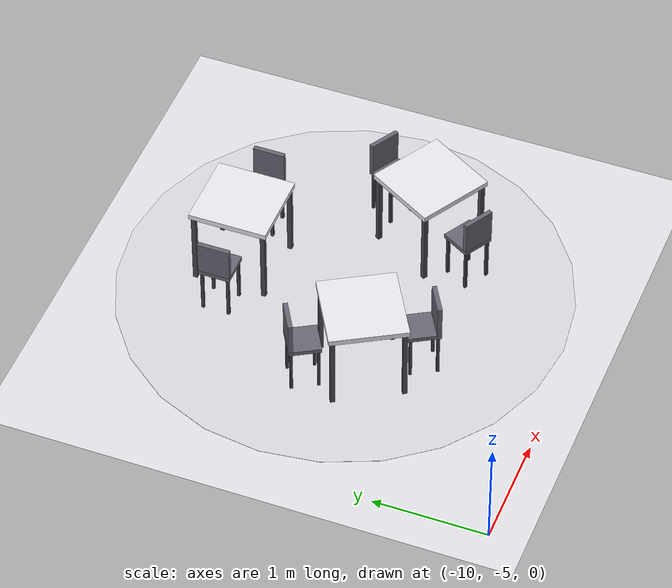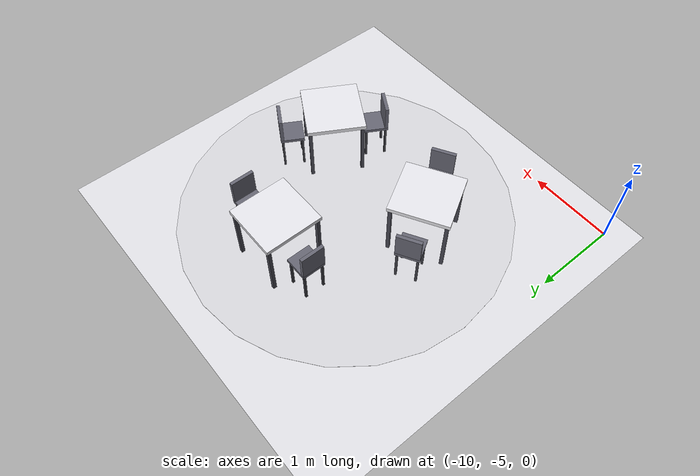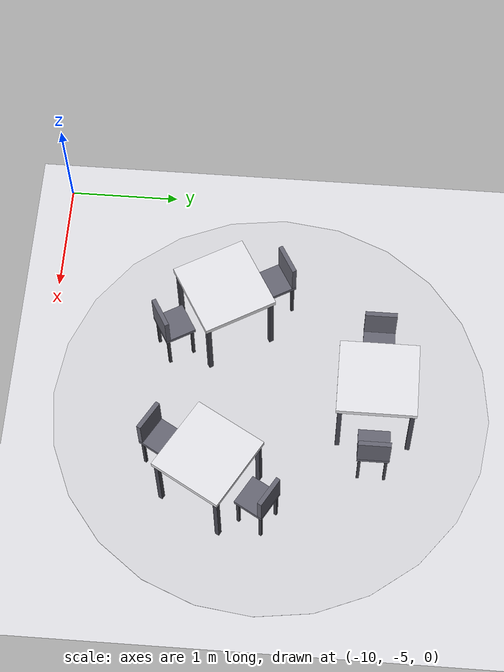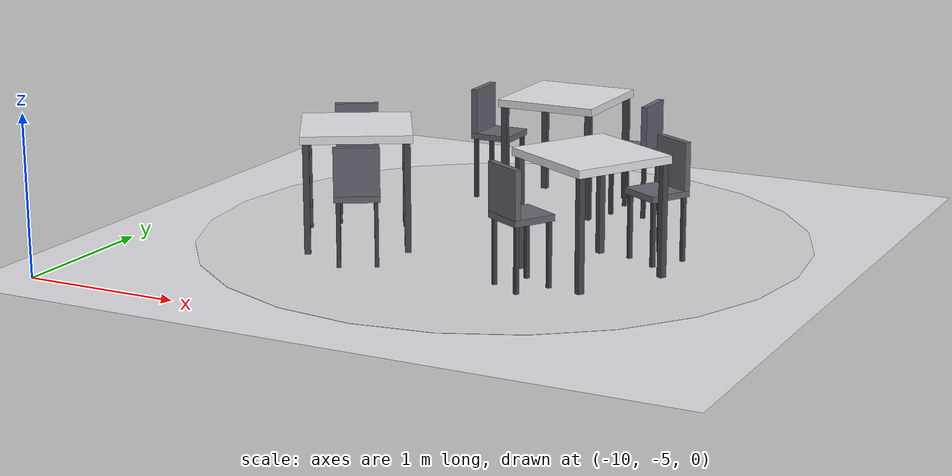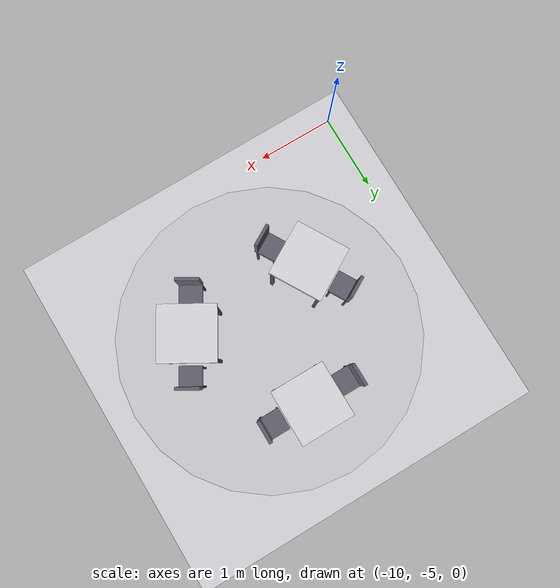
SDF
<sdf version="1.8">
 <world name="restaurant_blueprint_world">
  <model name="ground_plane">
   <static>true</static>
   <link name="link">
    <collision name="collision">
     <geometry><plane><normal>0 0 1</normal><size>120 120</size></plane></geometry>
    </collision>
    <visual name="visual">
     <geometry><plane><normal>0 0 1</normal><size>120 120</size></plane></geometry>
     <material>
      <ambient>0.88 0.88 0.90 1</ambient>
      <diffuse>0.88 0.88 0.90 1</diffuse>
      <specular>0.1 0.1 0.1 1</specular>
     </material>
    </visual>
   </link>
  </model>
  <model name="restaurant_boundary">
   <static>true</static>
   <link name="group02_pillar_sw">
    <visual name="sw_cluster_floor_disc_vis">
     <pose>-7.878 -2.955 0.003 0 0 0</pose>
     <geometry><cylinder><radius>1.95</radius><length>0.002</length></cylinder></geometry>
     <material><ambient>0.84 0.84 0.86 1</ambient><diffuse>0.84 0.84 0.86 1</diffuse></material>
    </visual>
    <visual name="sw_cluster_table_n_vis">
     <pose>-7.878 -2.030 0.725 0.0000 0.0000 0.0000</pose>
     <geometry><box><size>0.67 0.69 0.05</size></box></geometry>
     <material><ambient>0.85 0.85 0.88 1</ambient><diffuse>0.90 0.90 0.92 1</diffuse></material>
    </visual>
    <visual name="sw_cluster_table_n_leg_1_vis">
     <pose>-7.578 -1.720 0.350 0 0 0.0000</pose>
     <geometry><box><size>0.04 0.04 0.70</size></box></geometry>
     <material><ambient>0.22 0.22 0.25 1</ambient><diffuse>0.28 0.28 0.32 1</diffuse></material>
    </visual>
    <visual name="sw_cluster_table_n_leg_2_vis">
     <pose>-8.178 -1.720 0.350 0 0 0.0000</pose>
     <geometry><box><size>0.04 0.04 0.70</size></box></geometry>
     <material><ambient>0.22 0.22 0.25 1</ambient><diffuse>0.28 0.28 0.32 1</diffuse></material>
    </visual>
    <visual name="sw_cluster_table_n_leg_3_vis">
     <pose>-7.578 -2.340 0.350 0 0 0.0000</pose>
     <geometry><box><size>0.04 0.04 0.70</size></box></geometry>
     <material><ambient>0.22 0.22 0.25 1</ambient><diffuse>0.28 0.28 0.32 1</diffuse></material>
    </visual>
    <visual name="sw_cluster_table_n_leg_4_vis">
     <pose>-8.178 -2.340 0.350 0 0 0.0000</pose>
     <geometry><box><size>0.04 0.04 0.70</size></box></geometry>
     <material><ambient>0.22 0.22 0.25 1</ambient><diffuse>0.28 0.28 0.32 1</diffuse></material>
    </visual>
    <collision name="sw_cluster_table_n_col">
     <pose>-7.878 -2.030 0.725 0.0000 0.0000 0.0000</pose>
     <geometry><box><size>0.67 0.69 0.05</size></box></geometry>
    </collision>
    <collision name="sw_cluster_table_n_leg_1_col">
     <pose>-7.578 -1.720 0.350 0 0 0.0000</pose>
     <geometry><box><size>0.04 0.04 0.70</size></box></geometry>
    </collision>
    <collision name="sw_cluster_table_n_leg_2_col">
     <pose>-8.178 -1.720 0.350 0 0 0.0000</pose>
     <geometry><box><size>0.04 0.04 0.70</size></box></geometry>
    </collision>
    <collision name="sw_cluster_table_n_leg_3_col">
     <pose>-7.578 -2.340 0.350 0 0 0.0000</pose>
     <geometry><box><size>0.04 0.04 0.70</size></box></geometry>
    </collision>
    <collision name="sw_cluster_table_n_leg_4_col">
     <pose>-8.178 -2.340 0.350 0 0 0.0000</pose>
     <geometry><box><size>0.04 0.04 0.70</size></box></geometry>
    </collision>
    <visual name="sw_cluster_chair_n_e_seat_vis">
     <pose>-7.382 -2.030 0.430 0.0000 0.0000 0.0000</pose>
     <geometry><box><size>0.28 0.28 0.04</size></box></geometry>
     <material><ambient>0.30 0.30 0.33 1</ambient><diffuse>0.40 0.40 0.45 1</diffuse></material>
    </visual>
    <visual name="sw_cluster_chair_n_e_back_vis">
     <pose>-7.262 -2.030 0.600 0 0 0.0000</pose>
     <geometry><box><size>0.04 0.28 0.30</size></box></geometry>
     <material><ambient>0.30 0.30 0.33 1</ambient><diffuse>0.40 0.40 0.45 1</diffuse></material>
    </visual>
    <visual name="sw_cluster_chair_n_e_leg_1_vis">
     <pose>-7.267 -1.915 0.205 0 0 0.0000</pose>
     <geometry><box><size>0.025 0.025 0.41</size></box></geometry>
     <material><ambient>0.20 0.20 0.22 1</ambient><diffuse>0.25 0.25 0.28 1</diffuse></material>
    </visual>
    <visual name="sw_cluster_chair_n_e_leg_2_vis">
     <pose>-7.497 -1.915 0.205 0 0 0.0000</pose>
     <geometry><box><size>0.025 0.025 0.41</size></box></geometry>
     <material><ambient>0.20 0.20 0.22 1</ambient><diffuse>0.25 0.25 0.28 1</diffuse></material>
    </visual>
    <visual name="sw_cluster_chair_n_e_leg_3_vis">
     <pose>-7.267 -2.145 0.205 0 0 0.0000</pose>
     <geometry><box><size>0.025 0.025 0.41</size></box></geometry>
     <material><ambient>0.20 0.20 0.22 1</ambient><diffuse>0.25 0.25 0.28 1</diffuse></material>
    </visual>
    <visual name="sw_cluster_chair_n_e_leg_4_vis">
     <pose>-7.497 -2.145 0.205 0 0 0.0000</pose>
     <geometry><box><size>0.025 0.025 0.41</size></box></geometry>
     <material><ambient>0.20 0.20 0.22 1</ambient><diffuse>0.25 0.25 0.28 1</diffuse></material>
    </visual>
    <collision name="sw_cluster_chair_n_e_seat_col">
     <pose>-7.382 -2.030 0.430 0.0000 0.0000 0.0000</pose>
     <geometry><box><size>0.28 0.28 0.04</size></box></geometry>
    </collision>
    <collision name="sw_cluster_chair_n_e_back_col">
     <pose>-7.262 -2.030 0.600 0 0 0.0000</pose>
     <geometry><box><size>0.04 0.28 0.30</size></box></geometry>
    </collision>
    <collision name="sw_cluster_chair_n_e_leg_1_col">
     <pose>-7.267 -1.915 0.205 0 0 0.0000</pose>
     <geometry><box><size>0.025 0.025 0.41</size></box></geometry>
    </collision>
    <collision name="sw_cluster_chair_n_e_leg_2_col">
     <pose>-7.497 -1.915 0.205 0 0 0.0000</pose>
     <geometry><box><size>0.025 0.025 0.41</size></box></geometry>
    </collision>
    <collision name="sw_cluster_chair_n_e_leg_3_col">
     <pose>-7.267 -2.145 0.205 0 0 0.0000</pose>
     <geometry><box><size>0.025 0.025 0.41</size></box></geometry>
    </collision>
    <collision name="sw_cluster_chair_n_e_leg_4_col">
     <pose>-7.497 -2.145 0.205 0 0 0.0000</pose>
     <geometry><box><size>0.025 0.025 0.41</size></box></geometry>
    </collision>
    <visual name="sw_cluster_chair_n_w_seat_vis">
     <pose>-8.374 -2.030 0.430 0.0000 0.0000 0.0000</pose>
     <geometry><box><size>0.28 0.28 0.04</size></box></geometry>
     <material><ambient>0.30 0.30 0.33 1</ambient><diffuse>0.40 0.40 0.45 1</diffuse></material>
    </visual>
    <visual name="sw_cluster_chair_n_w_back_vis">
     <pose>-8.494 -2.030 0.600 0 0 0.0000</pose>
     <geometry><box><size>0.04 0.28 0.30</size></box></geometry>
     <material><ambient>0.30 0.30 0.33 1</ambient><diffuse>0.40 0.40 0.45 1</diffuse></material>
    </visual>
    <visual name="sw_cluster_chair_n_w_leg_1_vis">
     <pose>-8.259 -1.915 0.205 0 0 0.0000</pose>
     <geometry><box><size>0.025 0.025 0.41</size></box></geometry>
     <material><ambient>0.20 0.20 0.22 1</ambient><diffuse>0.25 0.25 0.28 1</diffuse></material>
    </visual>
    <visual name="sw_cluster_chair_n_w_leg_2_vis">
     <pose>-8.489 -1.915 0.205 0 0 0.0000</pose>
     <geometry><box><size>0.025 0.025 0.41</size></box></geometry>
     <material><ambient>0.20 0.20 0.22 1</ambient><diffuse>0.25 0.25 0.28 1</diffuse></material>
    </visual>
    <visual name="sw_cluster_chair_n_w_leg_3_vis">
     <pose>-8.259 -2.145 0.205 0 0 0.0000</pose>
     <geometry><box><size>0.025 0.025 0.41</size></box></geometry>
     <material><ambient>0.20 0.20 0.22 1</ambient><diffuse>0.25 0.25 0.28 1</diffuse></material>
    </visual>
    <visual name="sw_cluster_chair_n_w_leg_4_vis">
     <pose>-8.489 -2.145 0.205 0 0 0.0000</pose>
     <geometry><box><size>0.025 0.025 0.41</size></box></geometry>
     <material><ambient>0.20 0.20 0.22 1</ambient><diffuse>0.25 0.25 0.28 1</diffuse></material>
    </visual>
    <collision name="sw_cluster_chair_n_w_seat_col">
     <pose>-8.374 -2.030 0.430 0.0000 0.0000 0.0000</pose>
     <geometry><box><size>0.28 0.28 0.04</size></box></geometry>
    </collision>
    <collision name="sw_cluster_chair_n_w_back_col">
     <pose>-8.494 -2.030 0.600 0 0 0.0000</pose>
     <geometry><box><size>0.04 0.28 0.30</size></box></geometry>
    </collision>
    <collision name="sw_cluster_chair_n_w_leg_1_col">
     <pose>-8.259 -1.915 0.205 0 0 0.0000</pose>
     <geometry><box><size>0.025 0.025 0.41</size></box></geometry>
    </collision>
    <collision name="sw_cluster_chair_n_w_leg_2_col">
     <pose>-8.489 -1.915 0.205 0 0 0.0000</pose>
     <geometry><box><size>0.025 0.025 0.41</size></box></geometry>
    </collision>
    <collision name="sw_cluster_chair_n_w_leg_3_col">
     <pose>-8.259 -2.145 0.205 0 0 0.0000</pose>
     <geometry><box><size>0.025 0.025 0.41</size></box></geometry>
    </collision>
    <collision name="sw_cluster_chair_n_w_leg_4_col">
     <pose>-8.489 -2.145 0.205 0 0 0.0000</pose>
     <geometry><box><size>0.025 0.025 0.41</size></box></geometry>
    </collision>
    <visual name="sw_cluster_table_sw_vis">
     <pose>-8.679 -3.418 0.725 0.0000 0.0000 2.0944</pose>
     <geometry><box><size>0.67 0.69 0.05</size></box></geometry>
     <material><ambient>0.85 0.85 0.88 1</ambient><diffuse>0.90 0.90 0.92 1</diffuse></material>
    </visual>
    <visual name="sw_cluster_table_sw_leg_1_vis">
     <pose>-9.097 -3.313 0.350 0 0 2.0944</pose>
     <geometry><box><size>0.04 0.04 0.70</size></box></geometry>
     <material><ambient>0.22 0.22 0.25 1</ambient><diffuse>0.28 0.28 0.32 1</diffuse></material>
    </visual>
    <visual name="sw_cluster_table_sw_leg_2_vis">
     <pose>-8.797 -3.833 0.350 0 0 2.0944</pose>
     <geometry><box><size>0.04 0.04 0.70</size></box></geometry>
     <material><ambient>0.22 0.22 0.25 1</ambient><diffuse>0.28 0.28 0.32 1</diffuse></material>
    </visual>
    <visual name="sw_cluster_table_sw_leg_3_vis">
     <pose>-8.561 -3.003 0.350 0 0 2.0944</pose>
     <geometry><box><size>0.04 0.04 0.70</size></box></geometry>
     <material><ambient>0.22 0.22 0.25 1</ambient><diffuse>0.28 0.28 0.32 1</diffuse></material>
    </visual>
    <visual name="sw_cluster_table_sw_leg_4_vis">
     <pose>-8.261 -3.523 0.350 0 0 2.0944</pose>
     <geometry><box><size>0.04 0.04 0.70</size></box></geometry>
     <material><ambient>0.22 0.22 0.25 1</ambient><diffuse>0.28 0.28 0.32 1</diffuse></material>
    </visual>
    <collision name="sw_cluster_table_sw_col">
     <pose>-8.679 -3.418 0.725 0.0000 0.0000 2.0944</pose>
     <geometry><box><size>0.67 0.69 0.05</size></box></geometry>
    </collision>
    <collision name="sw_cluster_table_sw_leg_1_col">
     <pose>-9.097 -3.313 0.350 0 0 2.0944</pose>
     <geometry><box><size>0.04 0.04 0.70</size></box></geometry>
    </collision>
    <collision name="sw_cluster_table_sw_leg_2_col">
     <pose>-8.797 -3.833 0.350 0 0 2.0944</pose>
     <geometry><box><size>0.04 0.04 0.70</size></box></geometry>
    </collision>
    <collision name="sw_cluster_table_sw_leg_3_col">
     <pose>-8.561 -3.003 0.350 0 0 2.0944</pose>
     <geometry><box><size>0.04 0.04 0.70</size></box></geometry>
    </collision>
    <collision name="sw_cluster_table_sw_leg_4_col">
     <pose>-8.261 -3.523 0.350 0 0 2.0944</pose>
     <geometry><box><size>0.04 0.04 0.70</size></box></geometry>
    </collision>
    <visual name="sw_cluster_chair_sw_1_seat_vis">
     <pose>-8.927 -2.988 0.430 0.0000 0.0000 2.0944</pose>
     <geometry><box><size>0.28 0.28 0.04</size></box></geometry>
     <material><ambient>0.30 0.30 0.33 1</ambient><diffuse>0.40 0.40 0.45 1</diffuse></material>
    </visual>
    <visual name="sw_cluster_chair_sw_1_back_vis">
     <pose>-8.987 -2.884 0.600 0 0 2.0944</pose>
     <geometry><box><size>0.04 0.28 0.30</size></box></geometry>
     <material><ambient>0.30 0.30 0.33 1</ambient><diffuse>0.40 0.40 0.45 1</diffuse></material>
    </visual>
    <visual name="sw_cluster_chair_sw_1_leg_1_vis">
     <pose>-9.084 -2.946 0.205 0 0 2.0944</pose>
     <geometry><box><size>0.025 0.025 0.41</size></box></geometry>
     <material><ambient>0.20 0.20 0.22 1</ambient><diffuse>0.25 0.25 0.28 1</diffuse></material>
    </visual>
    <visual name="sw_cluster_chair_sw_1_leg_2_vis">
     <pose>-8.969 -3.145 0.205 0 0 2.0944</pose>
     <geometry><box><size>0.025 0.025 0.41</size></box></geometry>
     <material><ambient>0.20 0.20 0.22 1</ambient><diffuse>0.25 0.25 0.28 1</diffuse></material>
    </visual>
    <visual name="sw_cluster_chair_sw_1_leg_3_vis">
     <pose>-8.885 -2.831 0.205 0 0 2.0944</pose>
     <geometry><box><size>0.025 0.025 0.41</size></box></geometry>
     <material><ambient>0.20 0.20 0.22 1</ambient><diffuse>0.25 0.25 0.28 1</diffuse></material>
    </visual>
    <visual name="sw_cluster_chair_sw_1_leg_4_vis">
     <pose>-8.770 -3.030 0.205 0 0 2.0944</pose>
     <geometry><box><size>0.025 0.025 0.41</size></box></geometry>
     <material><ambient>0.20 0.20 0.22 1</ambient><diffuse>0.25 0.25 0.28 1</diffuse></material>
    </visual>
    <collision name="sw_cluster_chair_sw_1_seat_col">
     <pose>-8.927 -2.988 0.430 0.0000 0.0000 2.0944</pose>
     <geometry><box><size>0.28 0.28 0.04</size></box></geometry>
    </collision>
    <collision name="sw_cluster_chair_sw_1_back_col">
     <pose>-8.987 -2.884 0.600 0 0 2.0944</pose>
     <geometry><box><size>0.04 0.28 0.30</size></box></geometry>
    </collision>
    <collision name="sw_cluster_chair_sw_1_leg_1_col">
     <pose>-9.084 -2.946 0.205 0 0 2.0944</pose>
     <geometry><box><size>0.025 0.025 0.41</size></box></geometry>
    </collision>
    <collision name="sw_cluster_chair_sw_1_leg_2_col">
     <pose>-8.969 -3.145 0.205 0 0 2.0944</pose>
     <geometry><box><size>0.025 0.025 0.41</size></box></geometry>
    </collision>
    <collision name="sw_cluster_chair_sw_1_leg_3_col">
     <pose>-8.885 -2.831 0.205 0 0 2.0944</pose>
     <geometry><box><size>0.025 0.025 0.41</size></box></geometry>
    </collision>
    <collision name="sw_cluster_chair_sw_1_leg_4_col">
     <pose>-8.770 -3.030 0.205 0 0 2.0944</pose>
     <geometry><box><size>0.025 0.025 0.41</size></box></geometry>
    </collision>
    <visual name="sw_cluster_chair_sw_2_seat_vis">
     <pose>-8.431 -3.847 0.430 0.0000 0.0000 2.0944</pose>
     <geometry><box><size>0.28 0.28 0.04</size></box></geometry>
     <material><ambient>0.30 0.30 0.33 1</ambient><diffuse>0.40 0.40 0.45 1</diffuse></material>
    </visual>
    <visual name="sw_cluster_chair_sw_2_back_vis">
     <pose>-8.371 -3.951 0.600 0 0 2.0944</pose>
     <geometry><box><size>0.04 0.28 0.30</size></box></geometry>
     <material><ambient>0.30 0.30 0.33 1</ambient><diffuse>0.40 0.40 0.45 1</diffuse></material>
    </visual>
    <visual name="sw_cluster_chair_sw_2_leg_1_vis">
     <pose>-8.588 -3.805 0.205 0 0 2.0944</pose>
     <geometry><box><size>0.025 0.025 0.41</size></box></geometry>
     <material><ambient>0.20 0.20 0.22 1</ambient><diffuse>0.25 0.25 0.28 1</diffuse></material>
    </visual>
    <visual name="sw_cluster_chair_sw_2_leg_2_vis">
     <pose>-8.473 -4.004 0.205 0 0 2.0944</pose>
     <geometry><box><size>0.025 0.025 0.41</size></box></geometry>
     <material><ambient>0.20 0.20 0.22 1</ambient><diffuse>0.25 0.25 0.28 1</diffuse></material>
    </visual>
    <visual name="sw_cluster_chair_sw_2_leg_3_vis">
     <pose>-8.389 -3.690 0.205 0 0 2.0944</pose>
     <geometry><box><size>0.025 0.025 0.41</size></box></geometry>
     <material><ambient>0.20 0.20 0.22 1</ambient><diffuse>0.25 0.25 0.28 1</diffuse></material>
    </visual>
    <visual name="sw_cluster_chair_sw_2_leg_4_vis">
     <pose>-8.274 -3.889 0.205 0 0 2.0944</pose>
     <geometry><box><size>0.025 0.025 0.41</size></box></geometry>
     <material><ambient>0.20 0.20 0.22 1</ambient><diffuse>0.25 0.25 0.28 1</diffuse></material>
    </visual>
    <collision name="sw_cluster_chair_sw_2_seat_col">
     <pose>-8.431 -3.847 0.430 0.0000 0.0000 2.0944</pose>
     <geometry><box><size>0.28 0.28 0.04</size></box></geometry>
    </collision>
    <collision name="sw_cluster_chair_sw_2_back_col">
     <pose>-8.371 -3.951 0.600 0 0 2.0944</pose>
     <geometry><box><size>0.04 0.28 0.30</size></box></geometry>
    </collision>
    <collision name="sw_cluster_chair_sw_2_leg_1_col">
     <pose>-8.588 -3.805 0.205 0 0 2.0944</pose>
     <geometry><box><size>0.025 0.025 0.41</size></box></geometry>
    </collision>
    <collision name="sw_cluster_chair_sw_2_leg_2_col">
     <pose>-8.473 -4.004 0.205 0 0 2.0944</pose>
     <geometry><box><size>0.025 0.025 0.41</size></box></geometry>
    </collision>
    <collision name="sw_cluster_chair_sw_2_leg_3_col">
     <pose>-8.389 -3.690 0.205 0 0 2.0944</pose>
     <geometry><box><size>0.025 0.025 0.41</size></box></geometry>
    </collision>
    <collision name="sw_cluster_chair_sw_2_leg_4_col">
     <pose>-8.274 -3.889 0.205 0 0 2.0944</pose>
     <geometry><box><size>0.025 0.025 0.41</size></box></geometry>
    </collision>
    <visual name="sw_cluster_table_se_vis">
     <pose>-7.077 -3.418 0.725 0.0000 0.0000 -2.0944</pose>
     <geometry><box><size>0.67 0.69 0.05</size></box></geometry>
     <material><ambient>0.85 0.85 0.88 1</ambient><diffuse>0.90 0.90 0.92 1</diffuse></material>
    </visual>
    <visual name="sw_cluster_table_se_leg_1_vis">
     <pose>-6.959 -3.833 0.350 0 0 -2.0944</pose>
     <geometry><box><size>0.04 0.04 0.70</size></box></geometry>
     <material><ambient>0.22 0.22 0.25 1</ambient><diffuse>0.28 0.28 0.32 1</diffuse></material>
    </visual>
    <visual name="sw_cluster_table_se_leg_2_vis">
     <pose>-6.659 -3.313 0.350 0 0 -2.0944</pose>
     <geometry><box><size>0.04 0.04 0.70</size></box></geometry>
     <material><ambient>0.22 0.22 0.25 1</ambient><diffuse>0.28 0.28 0.32 1</diffuse></material>
    </visual>
    <visual name="sw_cluster_table_se_leg_3_vis">
     <pose>-7.495 -3.523 0.350 0 0 -2.0944</pose>
     <geometry><box><size>0.04 0.04 0.70</size></box></geometry>
     <material><ambient>0.22 0.22 0.25 1</ambient><diffuse>0.28 0.28 0.32 1</diffuse></material>
    </visual>
    <visual name="sw_cluster_table_se_leg_4_vis">
     <pose>-7.195 -3.003 0.350 0 0 -2.0944</pose>
     <geometry><box><size>0.04 0.04 0.70</size></box></geometry>
     <material><ambient>0.22 0.22 0.25 1</ambient><diffuse>0.28 0.28 0.32 1</diffuse></material>
    </visual>
    <collision name="sw_cluster_table_se_col">
     <pose>-7.077 -3.418 0.725 0.0000 0.0000 -2.0944</pose>
     <geometry><box><size>0.67 0.69 0.05</size></box></geometry>
    </collision>
    <collision name="sw_cluster_table_se_leg_1_col">
     <pose>-6.959 -3.833 0.350 0 0 -2.0944</pose>
     <geometry><box><size>0.04 0.04 0.70</size></box></geometry>
    </collision>
    <collision name="sw_cluster_table_se_leg_2_col">
     <pose>-6.659 -3.313 0.350 0 0 -2.0944</pose>
     <geometry><box><size>0.04 0.04 0.70</size></box></geometry>
    </collision>
    <collision name="sw_cluster_table_se_leg_3_col">
     <pose>-7.495 -3.523 0.350 0 0 -2.0944</pose>
     <geometry><box><size>0.04 0.04 0.70</size></box></geometry>
    </collision>
    <collision name="sw_cluster_table_se_leg_4_col">
     <pose>-7.195 -3.003 0.350 0 0 -2.0944</pose>
     <geometry><box><size>0.04 0.04 0.70</size></box></geometry>
    </collision>
    <visual name="sw_cluster_chair_se_1_seat_vis">
     <pose>-7.325 -3.847 0.430 0.0000 0.0000 -2.0944</pose>
     <geometry><box><size>0.28 0.28 0.04</size></box></geometry>
     <material><ambient>0.30 0.30 0.33 1</ambient><diffuse>0.40 0.40 0.45 1</diffuse></material>
    </visual>
    <visual name="sw_cluster_chair_se_1_back_vis">
     <pose>-7.385 -3.951 0.600 0 0 -2.0944</pose>
     <geometry><box><size>0.04 0.28 0.30</size></box></geometry>
     <material><ambient>0.30 0.30 0.33 1</ambient><diffuse>0.40 0.40 0.45 1</diffuse></material>
    </visual>
    <visual name="sw_cluster_chair_se_1_leg_1_vis">
     <pose>-7.283 -4.004 0.205 0 0 -2.0944</pose>
     <geometry><box><size>0.025 0.025 0.41</size></box></geometry>
     <material><ambient>0.20 0.20 0.22 1</ambient><diffuse>0.25 0.25 0.28 1</diffuse></material>
    </visual>
    <visual name="sw_cluster_chair_se_1_leg_2_vis">
     <pose>-7.168 -3.805 0.205 0 0 -2.0944</pose>
     <geometry><box><size>0.025 0.025 0.41</size></box></geometry>
     <material><ambient>0.20 0.20 0.22 1</ambient><diffuse>0.25 0.25 0.28 1</diffuse></material>
    </visual>
    <visual name="sw_cluster_chair_se_1_leg_3_vis">
     <pose>-7.482 -3.889 0.205 0 0 -2.0944</pose>
     <geometry><box><size>0.025 0.025 0.41</size></box></geometry>
     <material><ambient>0.20 0.20 0.22 1</ambient><diffuse>0.25 0.25 0.28 1</diffuse></material>
    </visual>
    <visual name="sw_cluster_chair_se_1_leg_4_vis">
     <pose>-7.367 -3.690 0.205 0 0 -2.0944</pose>
     <geometry><box><size>0.025 0.025 0.41</size></box></geometry>
     <material><ambient>0.20 0.20 0.22 1</ambient><diffuse>0.25 0.25 0.28 1</diffuse></material>
    </visual>
    <collision name="sw_cluster_chair_se_1_seat_col">
     <pose>-7.325 -3.847 0.430 0.0000 0.0000 -2.0944</pose>
     <geometry><box><size>0.28 0.28 0.04</size></box></geometry>
    </collision>
    <collision name="sw_cluster_chair_se_1_back_col">
     <pose>-7.385 -3.951 0.600 0 0 -2.0944</pose>
     <geometry><box><size>0.04 0.28 0.30</size></box></geometry>
    </collision>
    <collision name="sw_cluster_chair_se_1_leg_1_col">
     <pose>-7.283 -4.004 0.205 0 0 -2.0944</pose>
     <geometry><box><size>0.025 0.025 0.41</size></box></geometry>
    </collision>
    <collision name="sw_cluster_chair_se_1_leg_2_col">
     <pose>-7.168 -3.805 0.205 0 0 -2.0944</pose>
     <geometry><box><size>0.025 0.025 0.41</size></box></geometry>
    </collision>
    <collision name="sw_cluster_chair_se_1_leg_3_col">
     <pose>-7.482 -3.889 0.205 0 0 -2.0944</pose>
     <geometry><box><size>0.025 0.025 0.41</size></box></geometry>
    </collision>
    <collision name="sw_cluster_chair_se_1_leg_4_col">
     <pose>-7.367 -3.690 0.205 0 0 -2.0944</pose>
     <geometry><box><size>0.025 0.025 0.41</size></box></geometry>
    </collision>
    <visual name="sw_cluster_chair_se_2_seat_vis">
     <pose>-6.829 -2.988 0.430 0.0000 0.0000 -2.0944</pose>
     <geometry><box><size>0.28 0.28 0.04</size></box></geometry>
     <material><ambient>0.30 0.30 0.33 1</ambient><diffuse>0.40 0.40 0.45 1</diffuse></material>
    </visual>
    <visual name="sw_cluster_chair_se_2_back_vis">
     <pose>-6.769 -2.884 0.600 0 0 -2.0944</pose>
     <geometry><box><size>0.04 0.28 0.30</size></box></geometry>
     <material><ambient>0.30 0.30 0.33 1</ambient><diffuse>0.40 0.40 0.45 1</diffuse></material>
    </visual>
    <visual name="sw_cluster_chair_se_2_leg_1_vis">
     <pose>-6.787 -3.145 0.205 0 0 -2.0944</pose>
     <geometry><box><size>0.025 0.025 0.41</size></box></geometry>
     <material><ambient>0.20 0.20 0.22 1</ambient><diffuse>0.25 0.25 0.28 1</diffuse></material>
    </visual>
    <visual name="sw_cluster_chair_se_2_leg_2_vis">
     <pose>-6.672 -2.946 0.205 0 0 -2.0944</pose>
     <geometry><box><size>0.025 0.025 0.41</size></box></geometry>
     <material><ambient>0.20 0.20 0.22 1</ambient><diffuse>0.25 0.25 0.28 1</diffuse></material>
    </visual>
    <visual name="sw_cluster_chair_se_2_leg_3_vis">
     <pose>-6.986 -3.030 0.205 0 0 -2.0944</pose>
     <geometry><box><size>0.025 0.025 0.41</size></box></geometry>
     <material><ambient>0.20 0.20 0.22 1</ambient><diffuse>0.25 0.25 0.28 1</diffuse></material>
    </visual>
    <visual name="sw_cluster_chair_se_2_leg_4_vis">
     <pose>-6.871 -2.831 0.205 0 0 -2.0944</pose>
     <geometry><box><size>0.025 0.025 0.41</size></box></geometry>
     <material><ambient>0.20 0.20 0.22 1</ambient><diffuse>0.25 0.25 0.28 1</diffuse></material>
    </visual>
    <collision name="sw_cluster_chair_se_2_seat_col">
     <pose>-6.829 -2.988 0.430 0.0000 0.0000 -2.0944</pose>
     <geometry><box><size>0.28 0.28 0.04</size></box></geometry>
    </collision>
    <collision name="sw_cluster_chair_se_2_back_col">
     <pose>-6.769 -2.884 0.600 0 0 -2.0944</pose>
     <geometry><box><size>0.04 0.28 0.30</size></box></geometry>
    </collision>
    <collision name="sw_cluster_chair_se_2_leg_1_col">
     <pose>-6.787 -3.145 0.205 0 0 -2.0944</pose>
     <geometry><box><size>0.025 0.025 0.41</size></box></geometry>
    </collision>
    <collision name="sw_cluster_chair_se_2_leg_2_col">
     <pose>-6.672 -2.946 0.205 0 0 -2.0944</pose>
     <geometry><box><size>0.025 0.025 0.41</size></box></geometry>
    </collision>
    <collision name="sw_cluster_chair_se_2_leg_3_col">
     <pose>-6.986 -3.030 0.205 0 0 -2.0944</pose>
     <geometry><box><size>0.025 0.025 0.41</size></box></geometry>
    </collision>
    <collision name="sw_cluster_chair_se_2_leg_4_col">
     <pose>-6.871 -2.831 0.205 0 0 -2.0944</pose>
     <geometry><box><size>0.025 0.025 0.41</size></box></geometry>
    </collision>
   </link>
  </model>
 </world>
</sdf>
